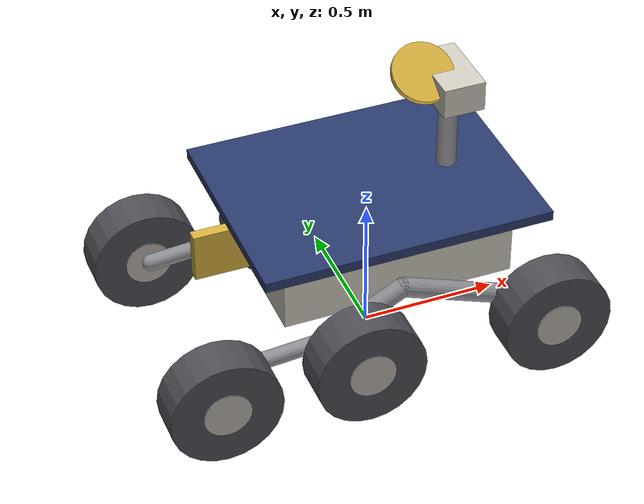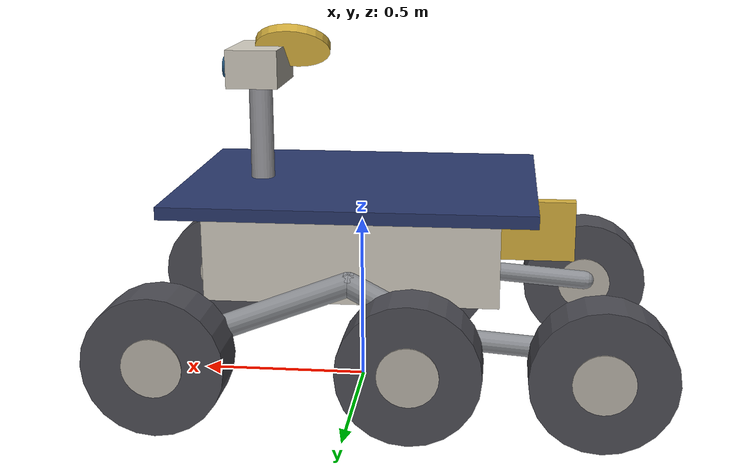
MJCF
<mujoco model="pyunto_r1">
  <compiler angle="radian" autolimits="true"/>

  <default>
    <default class="r1">
      <!-- No rgba in the default class: it would override every material below. -->
      <geom type="box" condim="3" friction="0.9 0.05 0.01" density="400" group="1"/>
      <joint type="hinge" damping="4" armature="0.05" limited="true"/>
    </default>

    <default class="r_strut_geom">
      <geom type="capsule" contype="0" conaffinity="0" material="r_strut" group="1"/>
    </default>

    <default class="r_pivot">
      <joint type="hinge" axis="0 1 0" damping="1.5" armature="0.02" stiffness="0"
             limited="true" range="-0.7 0.7"/>
    </default>

    <default class="r_wheel">
      <geom type="cylinder" condim="4" friction="1.6 0.15 0.02" density="600"
            material="r_wheel_mat" group="1"/>
      <joint type="hinge" axis="0 1 0" damping="0.6" armature="0.03" limited="false"/>
    </default>
  </default>

  <asset>
    <material name="r_body"      rgba="0.82 0.80 0.75 1" specular="0.35" shininess="0.40"/>
    <material name="r_deck"      rgba="0.16 0.22 0.42 1" specular="0.70" shininess="0.80"/>
    <material name="r_strut"     rgba="0.55 0.56 0.58 1" specular="0.55" shininess="0.55"/>
    <material name="r_wheel_mat" rgba="0.30 0.30 0.33 1" specular="0.25"/>
    <material name="r_rim"       rgba="0.72 0.70 0.66 1" specular="0.60" shininess="0.60"/>
    <material name="r_mast"      rgba="0.62 0.62 0.64 1" specular="0.55"/>
    <material name="r_lens"      rgba="0.12 0.30 0.45 1" specular="0.90" shininess="0.95"/>
    <material name="r_gold"      rgba="0.84 0.69 0.24 1" specular="0.85" shininess="0.85"/>
    <material name="r_hazard"    rgba="0.92 0.34 0.18 1" specular="0.30"/>
  </asset>

  <worldbody>
    <body name="chassis" pos="0 0 0.46" childclass="r1">
      <freejoint name="root"/>
      <inertial pos="0 0 -0.05" mass="55.0" diaginertia="6.0 9.0 11.0"/>
      <geom name="chassis_g" type="box" size="0.42 0.30 0.13" material="r_body"/>
      <!-- Solar deck: the big flat surface on top, and the rover's most recognisable feature
           from above. Dark blue, which is nothing like the grey of everything else here. -->
      <geom name="deck_g" type="box" size="0.52 0.40 0.018" pos="0 0 0.148" material="r_deck"/>
      <!-- Radiator and a hazard stripe, so the body is not a featureless slab in a photo. -->
      <geom name="rad_g" type="box" size="0.20 0.02 0.09" pos="-0.44 0 0.02"
            material="r_gold"/>
      <geom name="stripe_g" type="box" size="0.42 0.012 0.022" pos="0 -0.302 0.09"
            material="r_hazard"/>

      <body name="mast" pos="0.30 0 0.16">
        <inertial pos="0 0 0.14" mass="3.0" diaginertia="0.04 0.04 0.01"/>
        <geom name="mast_g" type="cylinder" size="0.035 0.15" pos="0 0 0.15"
              material="r_mast"/>
        <geom name="head_g" type="box" size="0.075 0.13 0.055" pos="0 0 0.345"
              material="r_body"/>
        <geom name="lens_l" type="cylinder" size="0.030 0.012" pos="0.078 0.070 0.345"
              euler="0 1.5708 0" material="r_lens"/>
        <geom name="lens_r" type="cylinder" size="0.030 0.012" pos="0.078 -0.070 0.345"
              euler="0 1.5708 0" material="r_lens"/>
        <!-- High-gain antenna dish, angled up at Earth. -->
        <geom name="antenna" type="cylinder" size="0.11 0.012" pos="-0.10 0 0.40"
              euler="0.6 0 0" material="r_gold"/>

        <camera name="head_cam" pos="0.085 0 0.345" xyaxes="0 -1 0 0 0 1" fovy="75"/>
        <site name="head_cam_site" pos="0.085 0 0.345" size="0.01" rgba="1 0 0 0.5"/>
        <camera name="look_left" pos="0.06 0.07 0.345" xyaxes="0.866 -0.5 0 0 0 1" fovy="90"/>
        <camera name="look_right" pos="0.06 -0.07 0.345" xyaxes="-0.866 -0.5 0 0 0 1" fovy="90"/>
        <camera name="hazard_cam" pos="0.075 0 0.30" xyaxes="0 -1 0 0.643 0 0.766" fovy="85"/>
      </body>

      <body name="rocker_l" pos="0 0.33 -0.06">
        <joint name="rocker_l" class="r_pivot"/>
        <inertial pos="0 0 -0.06" mass="6.0" diaginertia="0.10 0.30 0.30"/>
        <!-- Forward arm, out to the front wheel. -->
        <geom name="rock_l_f" class="r_strut_geom" fromto="0 0 0 0.52 0 -0.20" size="0.035"/>
        <!-- Rearward arm, back to the bogie pivot. -->
        <geom name="rock_l_b" class="r_strut_geom" fromto="0 0 0 -0.30 0 -0.16" size="0.035"/>

        <body name="steer_lf" pos="0.52 0.10 -0.20">
          <joint name="steer_lf" type="hinge" axis="0 0 1" range="-0.8 0.8" damping="3" armature="0.02"/>
          <geom name="steer_lf_g" type="cylinder" size="0.05 0.03" material="r_strut" contype="0" conaffinity="0" density="1"/>
          <body name="wheel_lf" pos="0 0 0">
          <joint name="drive_lf" class="r_wheel"/>
          <inertial pos="0 0 0" mass="4.0" diaginertia="0.05 0.09 0.05"/>
          <geom name="wheel_lf_g" size="0.20 0.075" euler="1.5708 0 0" class="r_wheel"/>
          <geom name="rim_lf" type="cylinder" size="0.085 0.078" euler="1.5708 0 0"
                material="r_rim" contype="0" conaffinity="0" density="1"/>
        </body>
          </body>

        <body name="bogie_l" pos="-0.30 0 -0.16">
          <joint name="bogie_l" class="r_pivot"/>
          <inertial pos="-0.14 0 -0.04" mass="3.0" diaginertia="0.03 0.10 0.10"/>
          <geom name="bog_l" class="r_strut_geom" fromto="0.12 0 0.02 -0.40 0 -0.02" size="0.030"/>

          <body name="wheel_lm" pos="0.12 0.10 -0.04">
            <joint name="drive_lm" class="r_wheel"/>
            <inertial pos="0 0 0" mass="4.0" diaginertia="0.05 0.09 0.05"/>
            <geom name="wheel_lm_g" size="0.20 0.075" euler="1.5708 0 0" class="r_wheel"/>
            <geom name="rim_lm" type="cylinder" size="0.085 0.078" euler="1.5708 0 0"
                  material="r_rim" contype="0" conaffinity="0" density="1"/>
          </body>
          <body name="steer_lr" pos="-0.40 0.10 -0.04">
          <joint name="steer_lr" type="hinge" axis="0 0 1" range="-0.8 0.8" damping="3" armature="0.02"/>
          <geom name="steer_lr_g" type="cylinder" size="0.05 0.03" material="r_strut" contype="0" conaffinity="0" density="1"/>
          <body name="wheel_lr" pos="0 0 0">
            <joint name="drive_lr" class="r_wheel"/>
            <inertial pos="0 0 0" mass="4.0" diaginertia="0.05 0.09 0.05"/>
            <geom name="wheel_lr_g" size="0.20 0.075" euler="1.5708 0 0" class="r_wheel"/>
            <geom name="rim_lr" type="cylinder" size="0.085 0.078" euler="1.5708 0 0"
                  material="r_rim" contype="0" conaffinity="0" density="1"/>
          </body>
          </body>
        </body>
      </body>

      <!-- ======================= RIGHT ROCKER-BOGIE ======================= -->
      <body name="rocker_r" pos="0 -0.33 -0.06">
        <joint name="rocker_r" class="r_pivot"/>
        <inertial pos="0 0 -0.06" mass="6.0" diaginertia="0.10 0.30 0.30"/>
        <geom name="rock_r_f" class="r_strut_geom" fromto="0 0 0 0.52 0 -0.20" size="0.035"/>
        <geom name="rock_r_b" class="r_strut_geom" fromto="0 0 0 -0.30 0 -0.16" size="0.035"/>

        <body name="steer_rf" pos="0.52 -0.10 -0.20">
          <joint name="steer_rf" type="hinge" axis="0 0 1" range="-0.8 0.8" damping="3" armature="0.02"/>
          <geom name="steer_rf_g" type="cylinder" size="0.05 0.03" material="r_strut" contype="0" conaffinity="0" density="1"/>
          <body name="wheel_rf" pos="0 0 0">
          <joint name="drive_rf" class="r_wheel"/>
          <inertial pos="0 0 0" mass="4.0" diaginertia="0.05 0.09 0.05"/>
          <geom name="wheel_rf_g" size="0.20 0.075" euler="1.5708 0 0" class="r_wheel"/>
          <geom name="rim_rf" type="cylinder" size="0.085 0.078" euler="1.5708 0 0"
                material="r_rim" contype="0" conaffinity="0" density="1"/>
        </body>
          </body>

        <body name="bogie_r" pos="-0.30 0 -0.16">
          <joint name="bogie_r" class="r_pivot"/>
          <inertial pos="-0.14 0 -0.04" mass="3.0" diaginertia="0.03 0.10 0.10"/>
          <geom name="bog_r" class="r_strut_geom" fromto="0.12 0 0.02 -0.40 0 -0.02" size="0.030"/>

          <body name="wheel_rm" pos="0.12 -0.10 -0.04">
            <joint name="drive_rm" class="r_wheel"/>
            <inertial pos="0 0 0" mass="4.0" diaginertia="0.05 0.09 0.05"/>
            <geom name="wheel_rm_g" size="0.20 0.075" euler="1.5708 0 0" class="r_wheel"/>
            <geom name="rim_rm" type="cylinder" size="0.085 0.078" euler="1.5708 0 0"
                  material="r_rim" contype="0" conaffinity="0" density="1"/>
          </body>
          <body name="steer_rr" pos="-0.40 -0.10 -0.04">
          <joint name="steer_rr" type="hinge" axis="0 0 1" range="-0.8 0.8" damping="3" armature="0.02"/>
          <geom name="steer_rr_g" type="cylinder" size="0.05 0.03" material="r_strut" contype="0" conaffinity="0" density="1"/>
          <body name="wheel_rr" pos="0 0 0">
            <joint name="drive_rr" class="r_wheel"/>
            <inertial pos="0 0 0" mass="4.0" diaginertia="0.05 0.09 0.05"/>
            <geom name="wheel_rr_g" size="0.20 0.075" euler="1.5708 0 0" class="r_wheel"/>
            <geom name="rim_rr" type="cylinder" size="0.085 0.078" euler="1.5708 0 0"
                  material="r_rim" contype="0" conaffinity="0" density="1"/>
          </body>
          </body>
        </body>
      </body>
    </body>
  </worldbody>

  <equality>
    <joint name="differential" joint1="rocker_l" joint2="rocker_r" polycoef="0 -1 0 0 0"/>
  </equality>

  <contact>
    <!-- Neighbouring links always touch; excluding them avoids constant contact churn. -->
    <exclude body1="chassis" body2="rocker_l"/>
    <exclude body1="chassis" body2="rocker_r"/>
    <exclude body1="chassis" body2="mast"/>
    <exclude body1="rocker_l" body2="bogie_l"/>
    <exclude body1="rocker_r" body2="bogie_r"/>
  </contact>

  <actuator>
    <velocity name="drive_lf" joint="drive_lf" kv="60" ctrlrange="-14 14" forcerange="-45 45"/>
    <velocity name="drive_lm" joint="drive_lm" kv="60" ctrlrange="-14 14" forcerange="-45 45"/>
    <velocity name="drive_lr" joint="drive_lr" kv="60" ctrlrange="-14 14" forcerange="-45 45"/>
    <velocity name="drive_rf" joint="drive_rf" kv="60" ctrlrange="-14 14" forcerange="-45 45"/>
    <velocity name="drive_rm" joint="drive_rm" kv="60" ctrlrange="-14 14" forcerange="-45 45"/>
    <velocity name="drive_rr" joint="drive_rr" kv="60" ctrlrange="-14 14" forcerange="-45 45"/>

    <position name="steer_lf" joint="steer_lf" kp="220" kv="25" ctrlrange="-0.8 0.8"
              forcerange="-60 60"/>
    <position name="steer_rf" joint="steer_rf" kp="220" kv="25" ctrlrange="-0.8 0.8"
              forcerange="-60 60"/>
    <position name="steer_lr" joint="steer_lr" kp="220" kv="25" ctrlrange="-0.8 0.8"
              forcerange="-60 60"/>
    <position name="steer_rr" joint="steer_rr" kp="220" kv="25" ctrlrange="-0.8 0.8"
              forcerange="-60 60"/>
  </actuator>

  <keyframe>
    <key name="stand"
         qpos="0 0 0.46  1 0 0 0
               0 0 0 0 0 0 0
               0 0 0 0 0 0 0"/>
  </keyframe>
</mujoco>
